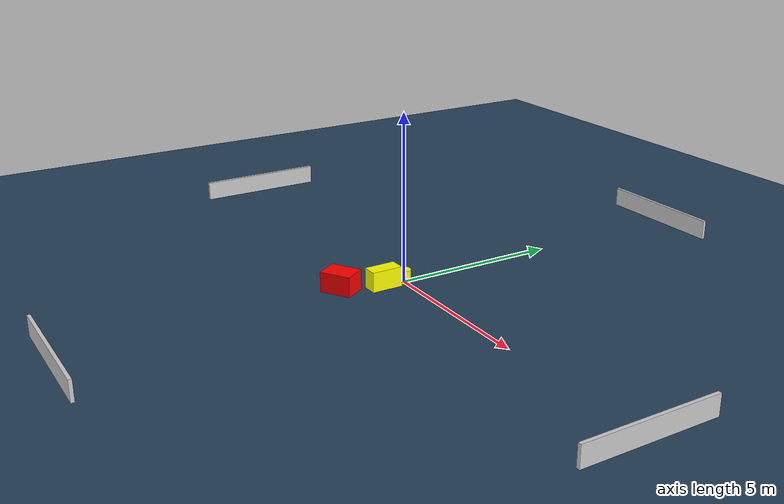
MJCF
<?xml version="1.0" ?>
<mujoco model="generated_environment">
  <option timestep="0.01" integrator="RK4" cone="elliptic"/>
  <default>
    <geom density="1"/>
  </default>
  <asset>
    <texture builtin="gradient" height="3072" name="skybox" rgb1="0.3 0.5 0.7" rgb2="0 0 0" type="skybox" width="512"/>
    <texture builtin="checker" height="300" name="groundplane" rgb1="0.2 0.3 0.4" rgb2="0.1 0.2 0.3" type="2d" width="300"/>
    <material name="groundplane" reflectance="0.2" texrepeat="5 5" texture="groundplane"/>
  </asset>
  <worldbody>
    <light dir="0 0 -1" directional="true" pos="0 0 1.5"/>
    <geom condim="3" friction="0.5 0.005 0.001" material="groundplane" name="floor" pos="0 0 0" size="0 0 0.05" type="plane"/>
    <body name="walls">
      <geom name="wall_1" condim="4" pos="-10.0 0.0 0.3" rgba="0.800000011920929 0.800000011920929 0.800000011920929 1.0" size="0.05 2.0 0.3" type="box"/>
      <geom name="wall_2" condim="4" pos="10.0 0.0 0.3" rgba="0.800000011920929 0.800000011920929 0.800000011920929 1.0" size="0.05 2.0 0.3" type="box"/>
      <geom name="wall_3" condim="4" pos="0.0 -10.0 0.3" rgba="0.800000011920929 0.800000011920929 0.800000011920929 1.0" size="2.0 0.05 0.3" type="box"/>
      <geom name="wall_4" condim="4" pos="0.0 10.0 0.3" rgba="0.800000011920929 0.800000011920929 0.800000011920929 1.0" size="2.0 0.05 0.3" type="box"/>
    </body>
    <body name="robot">
      <joint name="joint_x" type="slide" pos="0 0 0" axis="1 0 0"/>
      <joint name="joint_y" type="slide" pos="0 0 0" axis="0 1 0"/>
      <geom name="robot" type="cylinder" pos="0.0 0.0 0.2" size="0.2 0.2 0.0" mass="5.0" friction="1.0 0.005 0.0001" condim="4" rgba="1.0 1.0 0.0 1.0"/>
    </body>
    <body name="obstacle_1_movable">
      <geom name="obstacle_1_movable" condim="4" pos="-0.012113135541414195 -0.6761039406774785 0.3" euler="0 0 0.41426686909277866" friction="0.0 0.005 0.001" rgba="1.0 1.0 0.0 1.0" size="0.22788294996773528 0.4695807888121849 0.3" type="box" mass="0.1"/>
      <joint type="free"/>
    </body>
    <body name="obstacle_2_static">
      <geom name="obstacle_2_static" condim="4" pos="-0.422672570034391 -1.8323892344343962 0.3" euler="0 0 31.60318435951034" friction="0.0 0.005 0.001" rgba="1.0 0.0 0.0 1.0" size="0.4680471317994912 0.3493490717960879 0.3" type="box"/>
    </body>
  </worldbody>
  <actuator>
    <motor name="actuator_x" joint="joint_x" gear="1" ctrlrange="-1 1"/>
    <motor name="actuator_y" joint="joint_y" gear="1" ctrlrange="-1 1"/>
  </actuator>
</mujoco>
